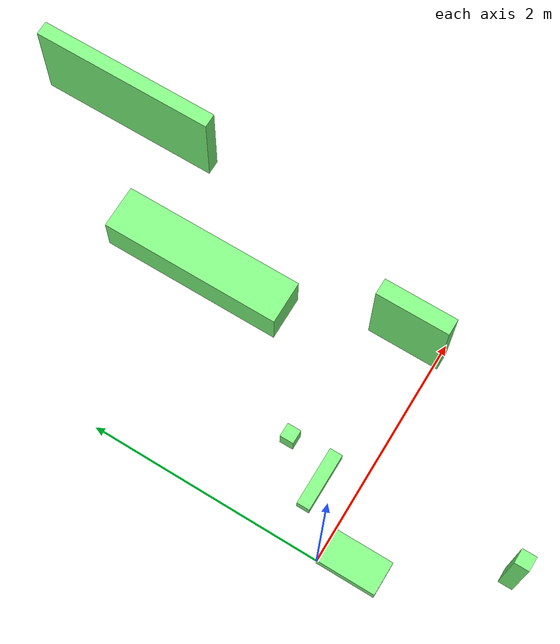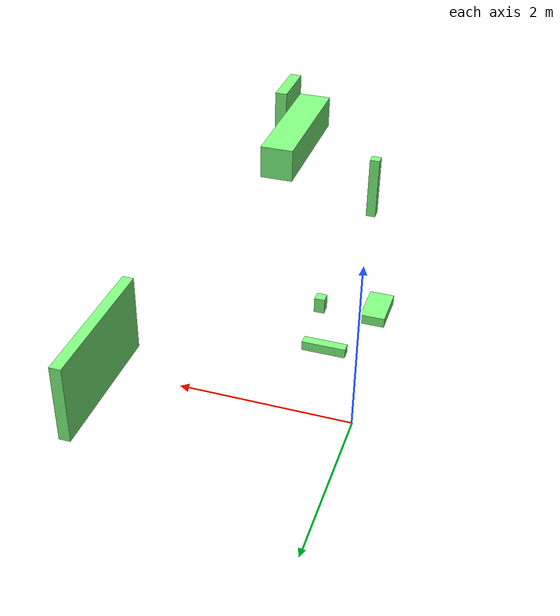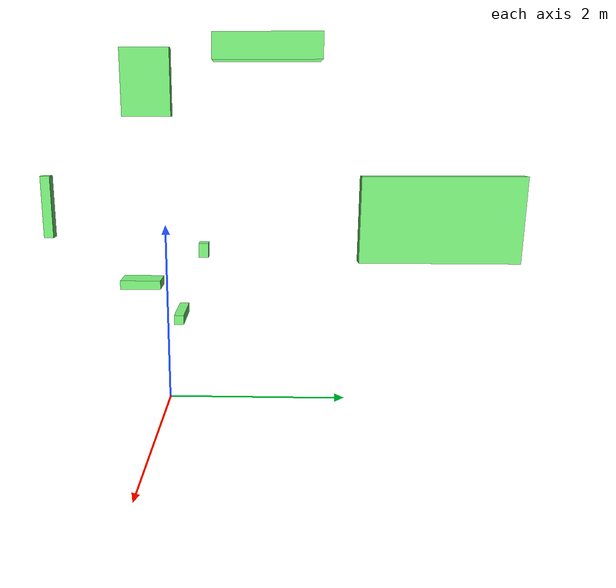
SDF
<?xml version="1.0"?>
<sdf version="1.7">
  <model name="static_obstacles_v2">
    <static>true</static>

    <!-- Box 1 -->
    <link name="box1_link">
      <collision name="box1_collision">
        <geometry>
          <box><size>0.45 0.1 0.1</size></box>
        </geometry>
      </collision>
      <visual name="box1_visual">
        <geometry><box><size>0.45 0.1 0.1</size></box></geometry>
        <material><ambient>0.5 1 0.5 1</ambient><diffuse>0.5 1 0.5 1</diffuse></material>
      </visual>
      <pose>0.3 0.2 1.1 0 0 0</pose>
    </link>

    <!-- Box 2 -->
    <link name="box2_link">
      <collision name="box2_collision">
        <geometry><box><size>0.1 0.1 0.65</size></box></geometry>
      </collision>
      <visual name="box2_visual">
        <geometry><box><size>0.1 0.1 0.65</size></box></geometry>
        <material><ambient>0.5 1 0.5 1</ambient><diffuse>0.5 1 0.5 1</diffuse></material>
      </visual>
      <pose>0.2 -1.2 2.23 0 0 0</pose>
    </link>

    <!-- Box 3 -->
    <link name="box3_link">
      <collision name="box3_collision">
        <geometry><box><size>0.25 0.45 0.1</size></box></geometry>
      </collision>
      <visual name="box3_visual">
        <geometry><box><size>0.25 0.45 0.1</size></box></geometry>
        <material><ambient>0.5 1 0.5 1</ambient><diffuse>0.5 1 0.5 1</diffuse></material>
      </visual>
      <pose>-0.11 -0.3 1.33 0 0 0</pose>
    </link>

    <!-- Box 4 -->
    <link name="box4_link">
      <collision name="box4_collision">
        <geometry><box><size>0.1 1.3 0.7</size></box></geometry>
      </collision>
      <visual name="box4_visual">
        <geometry><box><size>0.1 1.3 0.7</size></box></geometry>
        <material><ambient>0.5 1 0.5 1</ambient><diffuse>0.5 1 0.5 1</diffuse></material>
      </visual>
      <pose>1.6 2.5 2.33 0 0 0</pose>
    </link>

    <!-- Box 5 -->
    <link name="box5_link">
      <collision name="box5_collision">
        <geometry><box><size>0.25 1.05 0.25</size></box></geometry>
      </collision>
      <visual name="box5_visual">
        <geometry><box><size>0.25 1.05 0.25</size></box></geometry>
        <material><ambient>0.5 1 0.5 1</ambient><diffuse>0.5 1 0.5 1</diffuse></material>
      </visual>
      <pose>0.4 1.1 3.8 0 0 0</pose>
    </link>

    <!-- 新增 Box 6 -->
    <link name="box6_link">
      <collision name="box6_collision">
        <geometry><box><size>0.1 0.1 0.15</size></box></geometry>
      </collision>
      <visual name="box6_visual">
        <geometry><box><size>0.1 0.1 0.15</size></box></geometry>
        <material><ambient>0.5 1 0.5 1</ambient><diffuse>0.5 1 0.5 1</diffuse></material>
      </visual>
      <pose>0.3 0.45 1.8 0 0 0</pose>
    </link>

    <!-- 新增 Box 7 -->
    <link name="box7_link">
      <collision name="box7_collision">
        <geometry><box><size>0.1 0.45 0.6</size></box></geometry>
      </collision>
      <visual name="box7_visual">
        <geometry><box><size>0.1 0.45 0.6</size></box></geometry>
        <material><ambient>0.5 1 0.5 1</ambient><diffuse>0.5 1 0.5 1</diffuse></material>
      </visual>
      <pose>0.8 0.0 3.45 0 0 0</pose>
    </link>

  </model>
</sdf>
